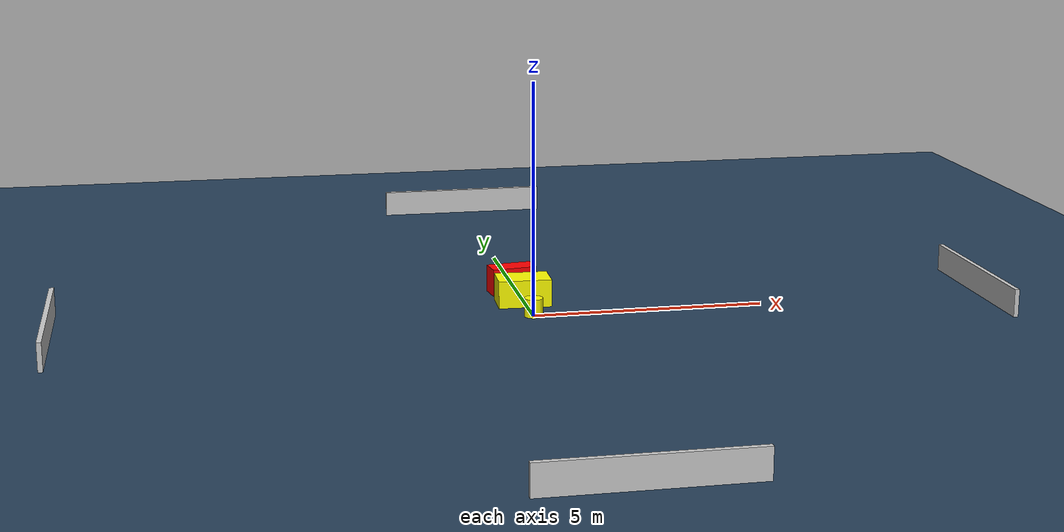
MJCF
<?xml version="1.0" ?>
<mujoco model="generated_environment">
  <option timestep="0.01" integrator="RK4" cone="elliptic"/>
  <default>
    <geom density="1"/>
  </default>
  <asset>
    <texture builtin="gradient" height="3072" name="skybox" rgb1="0.3 0.5 0.7" rgb2="0 0 0" type="skybox" width="512"/>
    <texture builtin="checker" height="300" name="groundplane" rgb1="0.2 0.3 0.4" rgb2="0.1 0.2 0.3" type="2d" width="300"/>
    <material name="groundplane" reflectance="0.2" texrepeat="5 5" texture="groundplane"/>
  </asset>
  <worldbody>
    <light dir="0 0 -1" directional="true" pos="0 0 1.5"/>
    <geom condim="3" friction="0.5 0.005 0.001" material="groundplane" name="floor" pos="0 0 0" size="0 0 0.05" type="plane"/>
    <body name="walls">
      <geom name="wall_1" condim="4" pos="-10.0 0.0 0.3" rgba="0.800000011920929 0.800000011920929 0.800000011920929 1.0" size="0.05 2.0 0.3" type="box"/>
      <geom name="wall_2" condim="4" pos="10.0 0.0 0.3" rgba="0.800000011920929 0.800000011920929 0.800000011920929 1.0" size="0.05 2.0 0.3" type="box"/>
      <geom name="wall_3" condim="4" pos="0.0 -10.0 0.3" rgba="0.800000011920929 0.800000011920929 0.800000011920929 1.0" size="2.0 0.05 0.3" type="box"/>
      <geom name="wall_4" condim="4" pos="0.0 10.0 0.3" rgba="0.800000011920929 0.800000011920929 0.800000011920929 1.0" size="2.0 0.05 0.3" type="box"/>
    </body>
    <body name="robot">
      <joint name="joint_x" type="slide" pos="0 0 0" axis="1 0 0"/>
      <joint name="joint_y" type="slide" pos="0 0 0" axis="0 1 0"/>
      <geom name="robot" type="cylinder" pos="0.0 0.0 0.2" size="0.2 0.2 0.0" mass="5.0" friction="1.0 0.005 0.0001" condim="4" rgba="1.0 1.0 0.0 1.0"/>
    </body>
    <body name="obstacle_1_movable">
      <geom name="obstacle_1_movable" condim="4" pos="-0.04083022119009308 1.014146627906344 0.3" euler="0 0 178.19383461405775" friction="0.0 0.005 0.001" rgba="1.0 1.0 0.0 1.0" size="0.5759916011699917 0.36106382317301156 0.3" type="box" mass="0.1"/>
      <joint type="free"/>
    </body>
    <body name="obstacle_2_static">
      <geom name="obstacle_2_static" condim="4" pos="-0.1178291863693504 1.9711234655110133 0.3" euler="0 0 97.71981759039372" friction="0.0 0.005 0.001" rgba="1.0 0.0 0.0 1.0" size="0.24393549505841214 0.4977052379217661 0.3" type="box"/>
    </body>
  </worldbody>
  <actuator>
    <motor name="actuator_x" joint="joint_x" gear="1" ctrlrange="-1 1"/>
    <motor name="actuator_y" joint="joint_y" gear="1" ctrlrange="-1 1"/>
  </actuator>
</mujoco>
